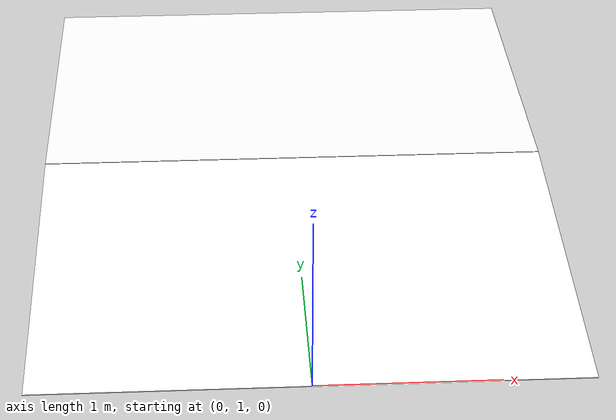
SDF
<sdf version="1.7">
  <world name="default">

    <!-- Need to be able to manipulate model state -->
    <plugin name="gazebo_ros_state" filename="libgazebo_ros_state.so">
      <ros>
        <namespace>/gazebo</namespace>
      </ros>

      <update_rate>1.0</update_rate>
    </plugin>

    <!-- Need to be able to manipulate model configuration -->
    <plugin name="gazebo_ros_properties" filename="libgazebo_ros_properties.so">
      <ros>
        <namespace>/gazebo</namespace>
      </ros>

      <update_rate>1.0</update_rate>
    </plugin>

    <physics type="ode">
    <max_step_size>0.001</max_step_size>
    <real_time_factor>1.0</real_time_factor>
    <real_time_update_rate>1000</real_time_update_rate>
    <gravity>0 0 -9.81</gravity>
        <ode>
            <solver>
            <type>quick</type>
            <iters>50</iters>
            <sor>1.3</sor>
            </solver>
            <constraints>
            <cfm>0.0</cfm>
            <erp>0.2</erp>
            <contact_max_correcting_vel>10.0</contact_max_correcting_vel>
            <contact_surface_layer>0.001</contact_surface_layer>
            </constraints>
        </ode>
    </physics>

    <scene>
    <sky>
        <clouds>
            <speed>12</speed>
        </clouds>
    </sky>
    </scene>
    <!-- A global light source -->
    <include>
        <uri>model://sun</uri>
    </include>
    <!-- A ground plane -->
    <include>
        <uri>model://ground_plane</uri>
    </include>
    <model name="static_environment">
  <static>true</static>
  <link name="region_0">
    <pose>0.0 2.0 0.04983341664682815 0.0 -0.1 1.5708</pose>
    <collision name="region_0_collision">
      <geometry>
        <box>
          <size>2.0 3.0 0.1</size>
        </box>
      </geometry>
      <surface>
        <friction>
          <ode>
            <mu>1.0</mu>
            <mu2>1.0</mu2>
          </ode>
        </friction>
      </surface>
    </collision>
    <visual name="region_0_visual">
      <geometry>
        <box>
          <size>2.0 3.0 0.1</size>
        </box>
      </geometry>
      <material>
        <ambient>1.0 1.0 1.0 1.0</ambient>
        <diffuse>1.0 1.0 1.0 1.0</diffuse>
      </material>
    </visual>
  </link>
  <link name="region_1">
    <pose>-7.328059481096916e-06 3.995004165264567 0.14966683329365632 0.0 0.0 1.5708</pose>
    <collision name="region_1_collision">
      <geometry>
        <box>
          <size>2.0 3.0 0.1</size>
        </box>
      </geometry>
      <surface>
        <friction>
          <ode>
            <mu>1.0</mu>
            <mu2>1.0</mu2>
          </ode>
        </friction>
      </surface>
    </collision>
    <visual name="region_1_visual">
      <geometry>
        <box>
          <size>2.0 3.0 0.1</size>
        </box>
      </geometry>
      <material>
        <ambient>1.0 1.0 1.0 1.0</ambient>
        <diffuse>1.0 1.0 1.0 1.0</diffuse>
      </material>
    </visual>
  </link>
</model>
  </world>
</sdf>
